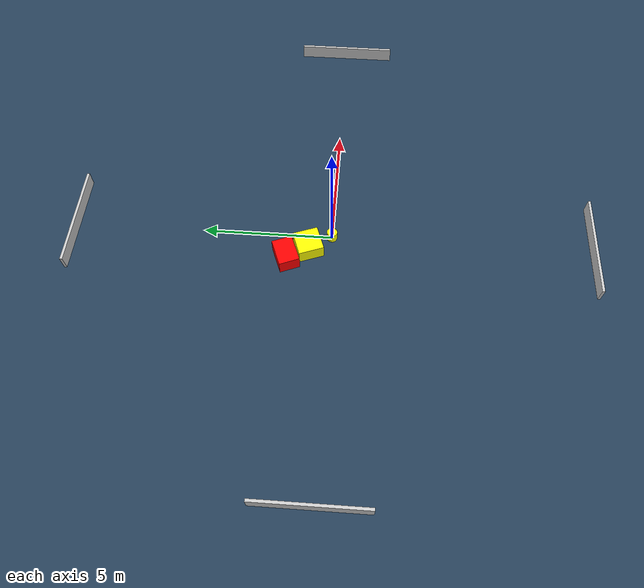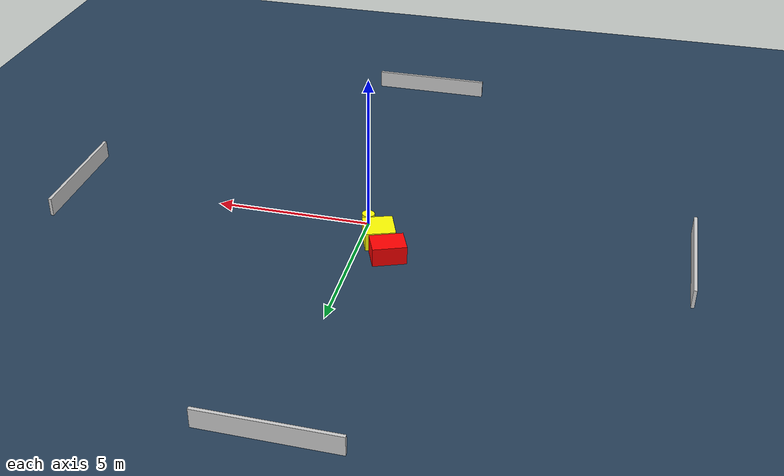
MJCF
<?xml version="1.0" ?>
<mujoco model="generated_environment">
  <option timestep="0.01" integrator="RK4" cone="elliptic"/>
  <default>
    <geom density="1"/>
  </default>
  <asset>
    <texture builtin="gradient" height="3072" name="skybox" rgb1="0.3 0.5 0.7" rgb2="0 0 0" type="skybox" width="512"/>
    <texture builtin="checker" height="300" name="groundplane" rgb1="0.2 0.3 0.4" rgb2="0.1 0.2 0.3" type="2d" width="300"/>
    <material name="groundplane" reflectance="0.2" texrepeat="5 5" texture="groundplane"/>
  </asset>
  <worldbody>
    <light dir="0 0 -1" directional="true" pos="0 0 1.5"/>
    <geom condim="3" friction="0.5 0.005 0.001" material="groundplane" name="floor" pos="0 0 0" size="0 0 0.05" type="plane"/>
    <body name="walls">
      <geom name="wall_1" condim="4" pos="-10.0 0.0 0.3" rgba="0.800000011920929 0.800000011920929 0.800000011920929 1.0" size="0.05 2.0 0.3" type="box"/>
      <geom name="wall_2" condim="4" pos="10.0 0.0 0.3" rgba="0.800000011920929 0.800000011920929 0.800000011920929 1.0" size="0.05 2.0 0.3" type="box"/>
      <geom name="wall_3" condim="4" pos="0.0 -10.0 0.3" rgba="0.800000011920929 0.800000011920929 0.800000011920929 1.0" size="2.0 0.05 0.3" type="box"/>
      <geom name="wall_4" condim="4" pos="0.0 10.0 0.3" rgba="0.800000011920929 0.800000011920929 0.800000011920929 1.0" size="2.0 0.05 0.3" type="box"/>
    </body>
    <body name="robot">
      <joint name="joint_x" type="slide" pos="0 0 0" axis="1 0 0"/>
      <joint name="joint_y" type="slide" pos="0 0 0" axis="0 1 0"/>
      <geom name="robot" type="cylinder" pos="0.0 0.0 0.2" size="0.2 0.2 0.0" mass="5.0" friction="1.0 0.005 0.0001" condim="4" rgba="1.0 1.0 0.0 1.0"/>
    </body>
    <body name="obstacle_1_movable">
      <geom name="obstacle_1_movable" condim="4" pos="-0.5518665781321325 0.8734661124035351 0.3" euler="0 0 200.22009921025557" friction="0.0 0.005 0.001" rgba="1.0 1.0 0.0 1.0" size="0.4750308252502171 0.48389209932642885 0.3" type="box" mass="0.1"/>
      <joint type="free"/>
    </body>
    <body name="obstacle_2_static">
      <geom name="obstacle_2_static" condim="4" pos="-1.0321181505551504 1.6893057140240981 0.3" euler="0 0 111.87799780283324" friction="0.0 0.005 0.001" rgba="1.0 0.0 0.0 1.0" size="0.39482064633582126 0.5281089393598476 0.3" type="box"/>
    </body>
  </worldbody>
  <actuator>
    <motor name="actuator_x" joint="joint_x" gear="1" ctrlrange="-1 1"/>
    <motor name="actuator_y" joint="joint_y" gear="1" ctrlrange="-1 1"/>
  </actuator>
</mujoco>
